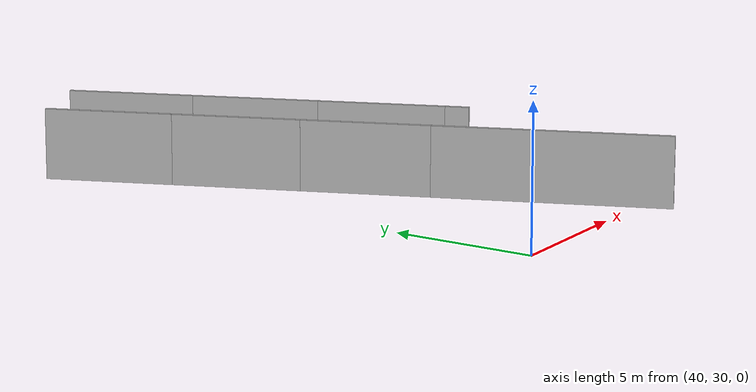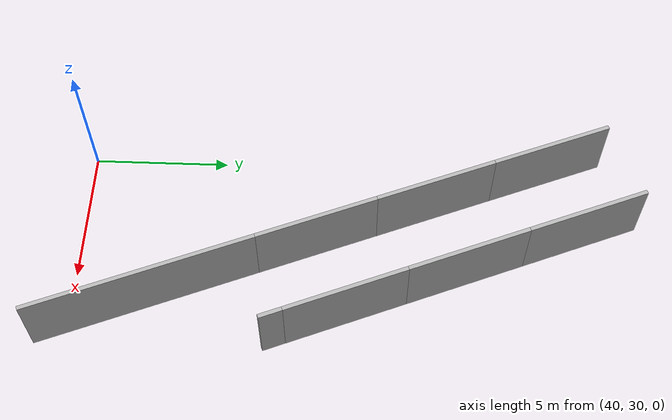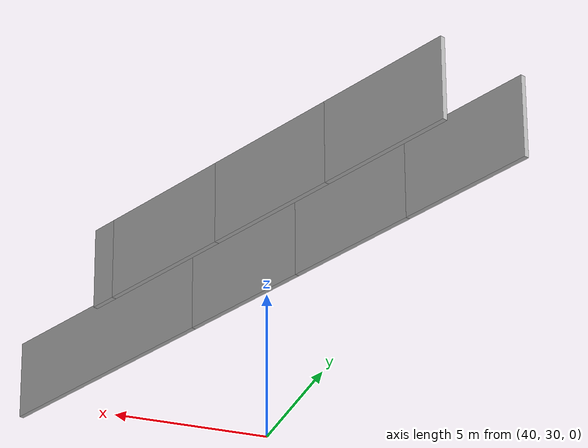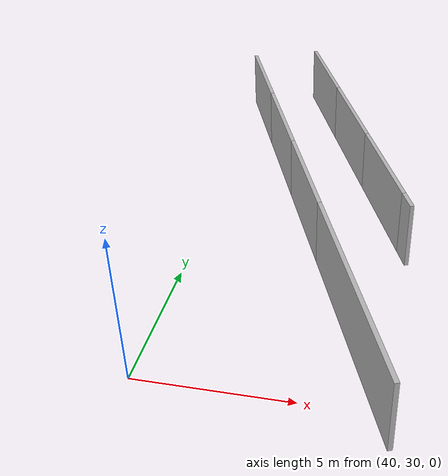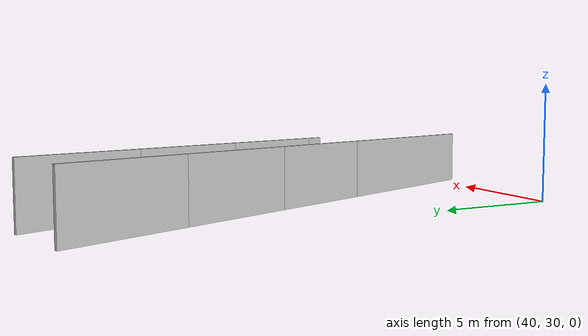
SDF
<?xml version="1.0" ?>
<sdf version="1.6">
  <model name="sps_4920">
    <pose frame="">0 0 0 0 -0 0</pose>
    <static>1</static>
    <self_collide>0</self_collide>
    <allow_auto_disable>0</allow_auto_disable>
    <link name="Wall591">
      <kinematic>0</kinematic>
      <gravity>1</gravity>
      <self_collide>0</self_collide>
      <collision name="collision">
        <geometry>
          <box>
            <size>0.844674 0.15 2.5</size>
          </box>
        </geometry>
        <pose frame="">0 0 0 0 -0 0</pose>
      </collision>
      <visual name="visual">
        <geometry>
          <box>
            <size>0.844674 0.15 2.5</size>
          </box>
        </geometry>
        <pose frame="">0 0 0 0 -0 0</pose>
        <cast_shadows>1</cast_shadows>
        <transparency>0.0</transparency>
      </visual>
      <pose frame="">47.5133 37.267 1.25 0 0 -1.18636</pose>
    </link>
    <link name="Wall670">
      <kinematic>0</kinematic>
      <gravity>1</gravity>
      <self_collide>0</self_collide>
      <collision name="collision">
        <geometry>
          <box>
            <size>8.26061 0.15 2.5</size>
          </box>
        </geometry>
        <pose frame="">0 0 0 0 -0 0</pose>
      </collision>
      <visual name="visual">
        <geometry>
          <box>
            <size>8.26061 0.15 2.5</size>
          </box>
        </geometry>
        <pose frame="">0 0 0 0 -0 0</pose>
        <cast_shadows>1</cast_shadows>
        <transparency>0.0</transparency>
      </visual>
      <pose frame="">46.1228 32.7052 1.25 0 0 -1.18639</pose>
    </link>
    <link name="Wall4706">
      <kinematic>0</kinematic>
      <gravity>1</gravity>
      <self_collide>0</self_collide>
      <collision name="collision">
        <geometry>
          <box>
            <size>4.52454 0.15 2.5</size>
          </box>
        </geometry>
        <pose frame="">0 0 0 0 -0 0</pose>
      </collision>
      <visual name="visual">
        <geometry>
          <box>
            <size>4.52454 0.15 2.5</size>
          </box>
        </geometry>
        <pose frame="">0 0 0 0 -0 0</pose>
        <cast_shadows>1</cast_shadows>
        <transparency>0.0</transparency>
      </visual>
      <pose frame="">40.3332 47.0218 1.25 0 0 -1.18653</pose>
    </link>
    <link name="Wall4707">
      <kinematic>0</kinematic>
      <gravity>1</gravity>
      <self_collide>0</self_collide>
      <collision name="collision">
        <geometry>
          <box>
            <size>4.5256 0.15 2.5</size>
          </box>
        </geometry>
        <pose frame="">0 0 0 0 -0 0</pose>
      </collision>
      <visual name="visual">
        <geometry>
          <box>
            <size>4.5256 0.15 2.5</size>
          </box>
        </geometry>
        <pose frame="">0 0 0 0 -0 0</pose>
        <cast_shadows>1</cast_shadows>
        <transparency>0.0</transparency>
      </visual>
      <pose frame="">42.0294 42.8267 1.25 0 0 -1.18656</pose>
    </link>
    <link name="Wall4708">
      <kinematic>0</kinematic>
      <gravity>1</gravity>
      <self_collide>0</self_collide>
      <collision name="collision">
        <geometry>
          <box>
            <size>4.52479 0.15 2.5</size>
          </box>
        </geometry>
        <pose frame="">0 0 0 0 -0 0</pose>
      </collision>
      <visual name="visual">
        <geometry>
          <box>
            <size>4.52479 0.15 2.5</size>
          </box>
        </geometry>
        <pose frame="">0 0 0 0 -0 0</pose>
        <cast_shadows>1</cast_shadows>
        <transparency>0.0</transparency>
      </visual>
      <pose frame="">43.7258 38.6315 1.25 0 0 -1.18654</pose>
    </link>
    <link name="Wall6443">
      <kinematic>0</kinematic>
      <gravity>1</gravity>
      <self_collide>0</self_collide>
      <collision name="collision">
        <geometry>
          <box>
            <size>4.52479 0.15 2.5</size>
          </box>
        </geometry>
        <pose frame="">0 0 0 0 -0 0</pose>
      </collision>
      <visual name="visual">
        <geometry>
          <box>
            <size>4.52479 0.15 2.5</size>
          </box>
        </geometry>
        <pose frame="">0 0 0 0 -0 0</pose>
        <cast_shadows>1</cast_shadows>
        <transparency>0.0</transparency>
      </visual>
      <pose frame="">43.1144 48.1467 1.25 0 0 -1.18654</pose>
    </link>
    <link name="Wall6444">
      <kinematic>0</kinematic>
      <gravity>1</gravity>
      <self_collide>0</self_collide>
      <collision name="collision">
        <geometry>
          <box>
            <size>4.52591 0.15 2.5</size>
          </box>
        </geometry>
        <pose frame="">0 0 0 0 -0 0</pose>
      </collision>
      <visual name="visual">
        <geometry>
          <box>
            <size>4.52591 0.15 2.5</size>
          </box>
        </geometry>
        <pose frame="">0 0 0 0 -0 0</pose>
        <cast_shadows>1</cast_shadows>
        <transparency>0.0</transparency>
      </visual>
      <pose frame="">44.8107 43.9513 1.25 0 0 -1.18661</pose>
    </link>
    <link name="Wall6445">
      <kinematic>0</kinematic>
      <gravity>1</gravity>
      <self_collide>0</self_collide>
      <collision name="collision">
        <geometry>
          <box>
            <size>4.52467 0.15 2.5</size>
          </box>
        </geometry>
        <pose frame="">0 0 0 0 -0 0</pose>
      </collision>
      <visual name="visual">
        <geometry>
          <box>
            <size>4.52467 0.15 2.5</size>
          </box>
        </geometry>
        <pose frame="">0 0 0 0 -0 0</pose>
        <cast_shadows>1</cast_shadows>
        <transparency>0.0</transparency>
      </visual>
      <pose frame="">46.5069 39.7559 1.25 0 0 -1.18657</pose>
    </link>
  </model>
</sdf>
